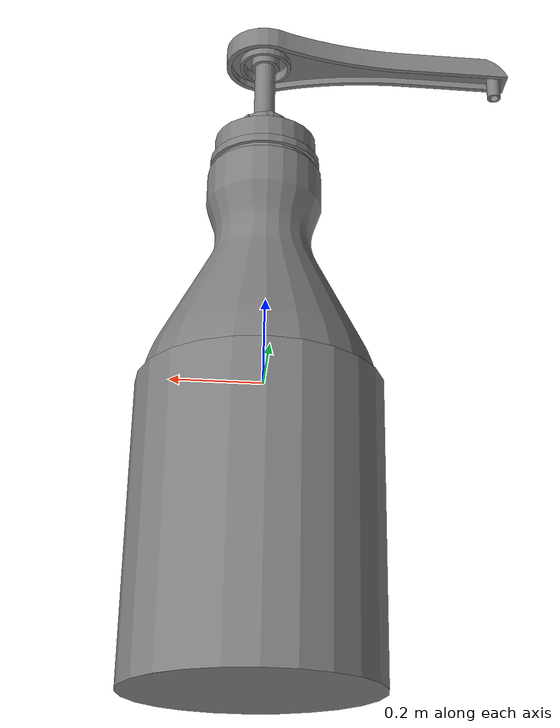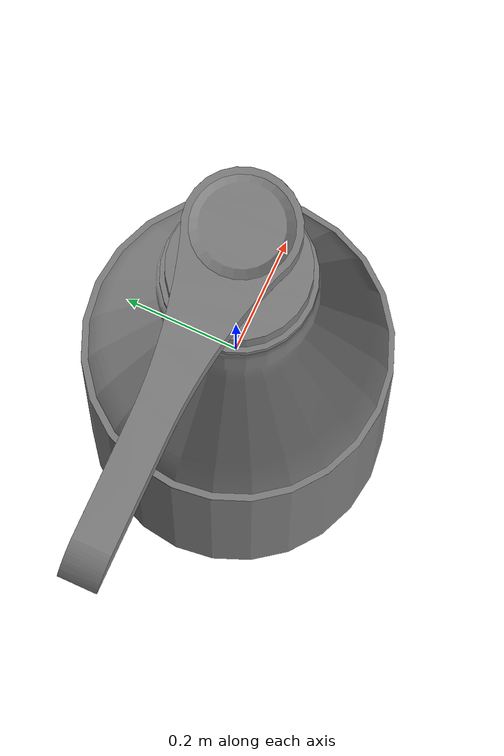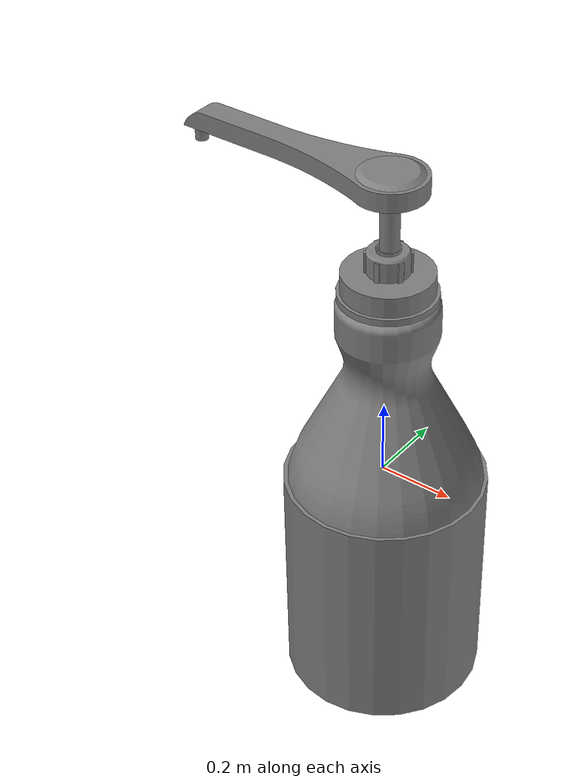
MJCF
<?xml version='1.0' encoding='UTF-8'?>
<mujoco model="partnet_6ff509da-bd03-4a9c-b719-4fca6a0ae4ae-0">
  <compiler angle="radian"/>
  <asset>
    <mesh name="original_31" content_type="model/obj" file="textured_objs/original_31.obj"/>
    <mesh name="original_32" content_type="model/obj" file="textured_objs/original_32.obj"/>
    <mesh name="original_29" content_type="model/obj" file="textured_objs/original_29.obj"/>
    <mesh name="original_33" content_type="model/obj" file="textured_objs/original_33.obj"/>
    <mesh name="original_34" content_type="model/obj" file="textured_objs/original_34.obj"/>
    <mesh name="original_37" content_type="model/obj" file="textured_objs/original_37.obj"/>
    <mesh name="original_38" content_type="model/obj" file="textured_objs/original_38.obj"/>
    <mesh name="original_35" content_type="model/obj" file="textured_objs/original_35.obj"/>
    <mesh name="original_36" content_type="model/obj" file="textured_objs/original_36.obj"/>
    <mesh name="original_16" content_type="model/obj" file="textured_objs/original_16.obj"/>
    <mesh name="original_17" content_type="model/obj" file="textured_objs/original_17.obj"/>
    <mesh name="original_15" content_type="model/obj" file="textured_objs/original_15.obj"/>
    <mesh name="original_20" content_type="model/obj" file="textured_objs/original_20.obj"/>
    <mesh name="original_18" content_type="model/obj" file="textured_objs/original_18.obj"/>
    <mesh name="original_23" content_type="model/obj" file="textured_objs/original_23.obj"/>
    <mesh name="original_19" content_type="model/obj" file="textured_objs/original_19.obj"/>
    <mesh name="original_21" content_type="model/obj" file="textured_objs/original_21.obj"/>
    <mesh name="original_25" content_type="model/obj" file="textured_objs/original_25.obj"/>
    <mesh name="original_24" content_type="model/obj" file="textured_objs/original_24.obj"/>
    <mesh name="original_4" content_type="model/obj" file="textured_objs/original_4.obj"/>
    <mesh name="original_3" content_type="model/obj" file="textured_objs/original_3.obj"/>
    <mesh name="original_9" content_type="model/obj" file="textured_objs/original_9.obj"/>
    <mesh name="original_6" content_type="model/obj" file="textured_objs/original_6.obj"/>
    <mesh name="original_11" content_type="model/obj" file="textured_objs/original_11.obj"/>
    <mesh name="original_7" content_type="model/obj" file="textured_objs/original_7.obj"/>
    <mesh name="original_10" content_type="model/obj" file="textured_objs/original_10.obj"/>
    <mesh name="original_14" content_type="model/obj" file="textured_objs/original_14.obj"/>
  </asset>
  <worldbody>
    <body name="base">
      <body name="link_2" quat="0.5 0.5 -0.5 -0.5">
        <geom type="mesh" mesh="original_4"/>
        <geom type="mesh" mesh="original_3"/>
        <geom type="mesh" mesh="original_9"/>
        <geom type="mesh" mesh="original_6"/>
        <geom type="mesh" mesh="original_11"/>
        <geom type="mesh" mesh="original_7"/>
        <geom type="mesh" mesh="original_10"/>
        <geom type="mesh" mesh="original_14"/>
        <body name="link_1_helper" pos="-0.000426427 0 -0.00686714">
          <inertial pos="0 0 0" mass="1e-06" diaginertia="1e-10 1e-10 1e-10"/>
          <joint name="joint_4" pos="0 0 0" axis="0 1 0" type="slide" range="0 0.052"/>
          <body name="link_1">
            <joint name="joint_1" pos="0 0 0" axis="0 -1 0"/>
            <geom pos="0.000426427 0 0.00686714" quat="1 0 0 0" type="mesh" mesh="original_16"/>
            <geom pos="0.000426427 0 0.00686714" quat="1 0 0 0" type="mesh" mesh="original_17"/>
            <geom pos="0.000426427 0 0.00686714" quat="1 0 0 0" type="mesh" mesh="original_15"/>
            <geom pos="0.000426427 0 0.00686714" quat="1 0 0 0" type="mesh" mesh="original_20"/>
            <geom pos="0.000426427 0 0.00686714" quat="1 0 0 0" type="mesh" mesh="original_18"/>
            <geom pos="0.000426427 0 0.00686714" quat="1 0 0 0" type="mesh" mesh="original_23"/>
            <geom pos="0.000426427 0 0.00686714" quat="1 0 0 0" type="mesh" mesh="original_19"/>
            <geom pos="0.000426427 0 0.00686714" quat="1 0 0 0" type="mesh" mesh="original_21"/>
            <geom pos="0.000426427 0 0.00686714" quat="1 0 0 0" type="mesh" mesh="original_25"/>
            <geom pos="0.000426427 0 0.00686714" quat="1 0 0 0" type="mesh" mesh="original_24"/>
            <body name="link_0_helper" pos="0.00452093 0 -0.00581402">
              <inertial pos="0 0 0" mass="1e-06" diaginertia="1e-10 1e-10 1e-10"/>
              <joint name="joint_3" pos="0 0 0" axis="0 -1 0" type="slide" range="0 0.04"/>
              <body name="link_0">
                <joint name="joint_0" pos="0 0 0" axis="0 1 0"/>
                <geom pos="-0.0040945 0 0.0126812" quat="1 0 0 0" type="mesh" mesh="original_31"/>
                <geom pos="-0.0040945 0 0.0126812" quat="1 0 0 0" type="mesh" mesh="original_32"/>
                <geom pos="-0.0040945 0 0.0126812" quat="1 0 0 0" type="mesh" mesh="original_29"/>
                <geom pos="-0.0040945 0 0.0126812" quat="1 0 0 0" type="mesh" mesh="original_33"/>
                <geom pos="-0.0040945 0 0.0126812" quat="1 0 0 0" type="mesh" mesh="original_34"/>
                <geom pos="-0.0040945 0 0.0126812" quat="1 0 0 0" type="mesh" mesh="original_37"/>
                <geom pos="-0.0040945 0 0.0126812" quat="1 0 0 0" type="mesh" mesh="original_38"/>
                <geom pos="-0.0040945 0 0.0126812" quat="1 0 0 0" type="mesh" mesh="original_35"/>
                <geom pos="-0.0040945 0 0.0126812" quat="1 0 0 0" type="mesh" mesh="original_36"/>
              </body>
            </body>
          </body>
        </body>
      </body>
    </body>
  </worldbody>
</mujoco>
